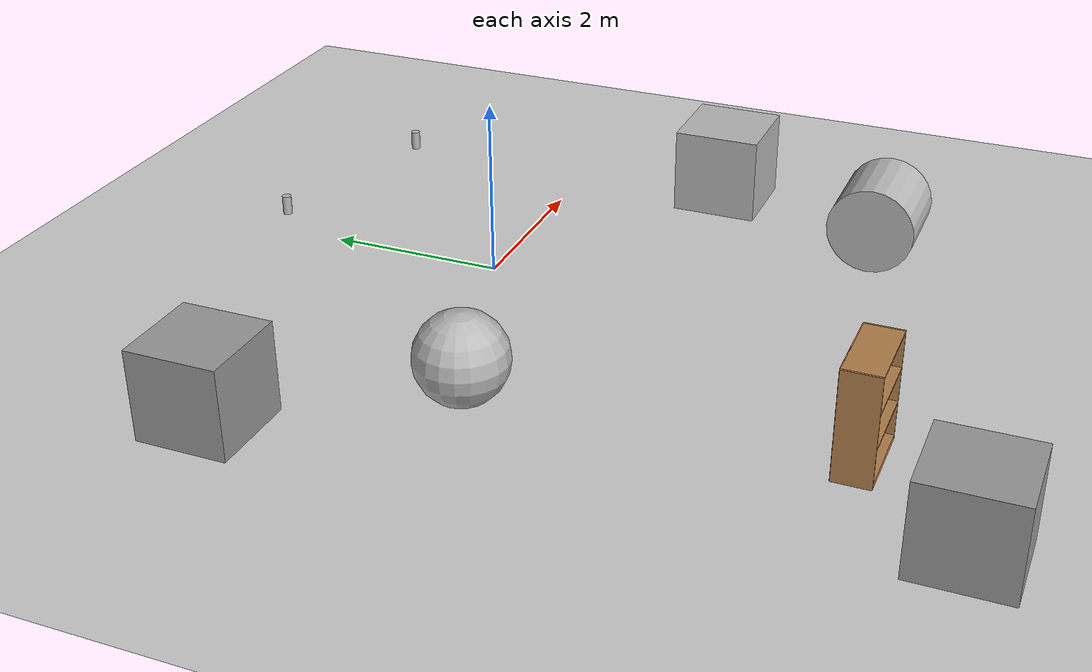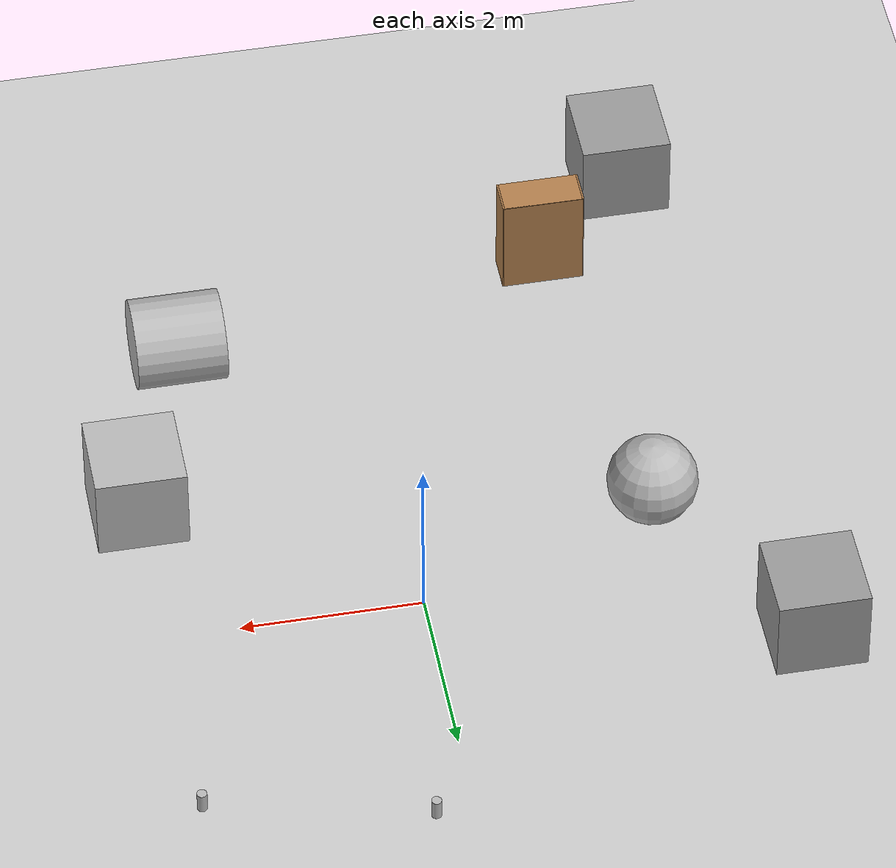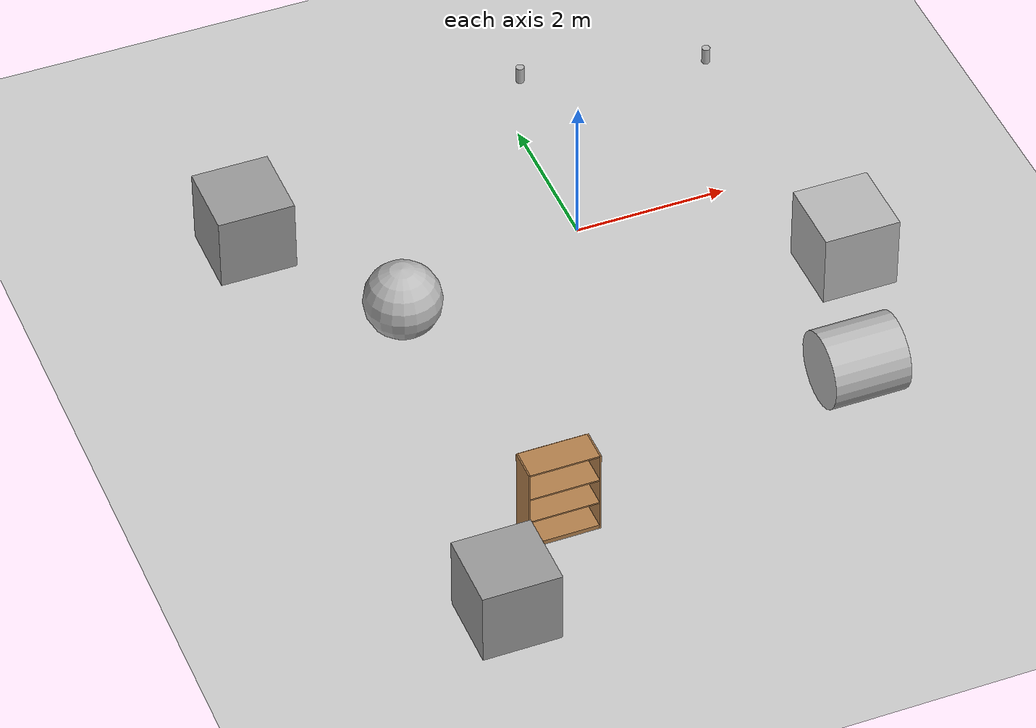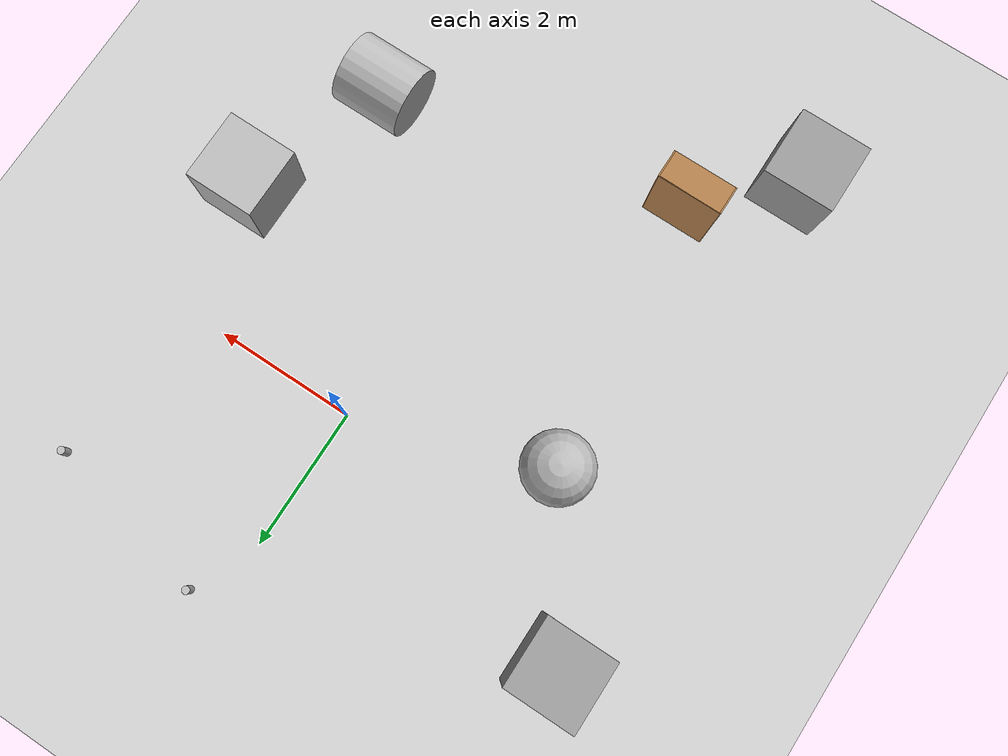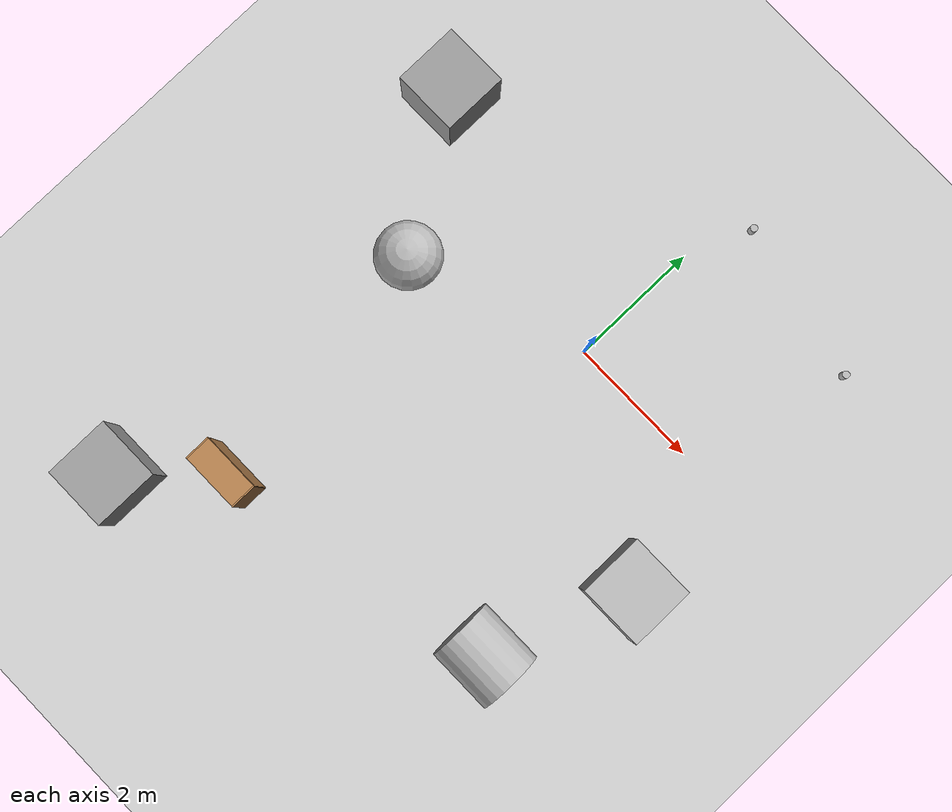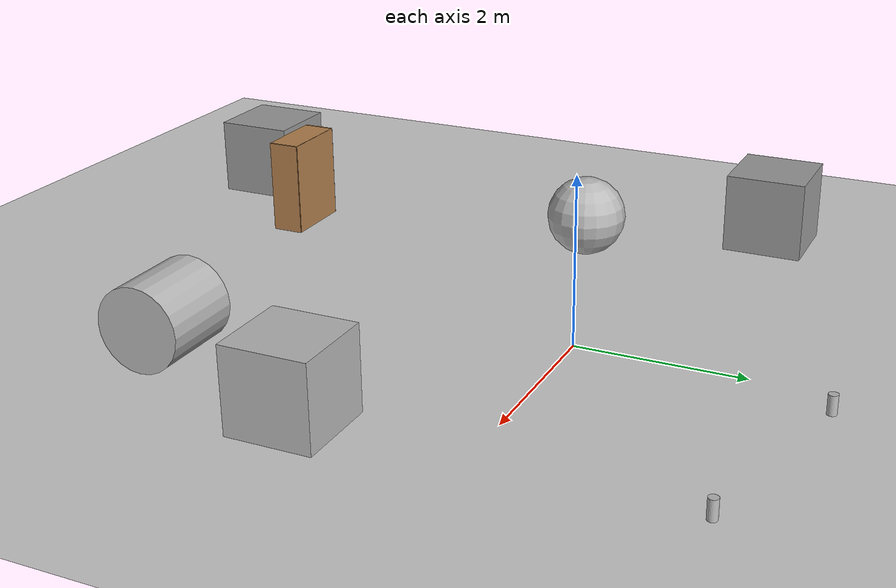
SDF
<sdf version="1.6">
 <world name="default">
  <model name="ground_plane">
   <static>1</static>
   <link name="link">
    <collision name="collision">
     <geometry><plane><normal>0 0 1</normal><size>100 100</size></plane></geometry>
     <surface><friction><ode><mu>100</mu><mu2>50</mu2></ode></friction></surface>
    </collision>
    <visual name="visual">
     <cast_shadows>0</cast_shadows>
     <geometry><plane><normal>0 0 1</normal><size>100 100</size></plane></geometry>
     <material>
      <script><uri>file://media/materials/scripts/gazebo.material</uri><name>Gazebo/Grey</name></script>
     </material>
    </visual>
   </link>
  </model>
  <light name="sun" type="directional">
   <pose>0 0 10 0 -0 0</pose>
   <diffuse>0.8 0.8 0.8 1</diffuse>
   <specular>0.1 0.1 0.1 1</specular>
   <attenuation>
    <range>1000</range>
    <constant>0.9</constant>
    <linear>0.01</linear>
    <quadratic>0.001</quadratic>
   </attenuation>
   <direction>-0.5 0.5 -1</direction>
  </light>
  <model name="box">
   <pose>2.82212 -1.87579 0.5 0 -0 0</pose>
   <link name="link">
    <collision name="collision"><geometry><box><size>1 1 1</size></box></geometry></collision>
    <visual name="visual">
     <geometry><box><size>1 1 1</size></box></geometry>
     <material><script><uri>__default__</uri><name>__default__</name></script></material>
    </visual>
    <inertial>
     <inertia><ixx>1</ixx><ixy>0</ixy><ixz>0</ixz><iyy>1</iyy><iyz>0</iyz><izz>1</izz></inertia>
     <mass>1</mass>
    </inertial>
   </link>
  </model>
  <model name="sphere">
   <pose>-2.67829 -0.886796 0.5 0 -0 0</pose>
   <link name="link">
    <collision name="collision"><geometry><sphere><radius>0.5</radius></sphere></geometry></collision>
    <visual name="visual">
     <geometry><sphere><radius>0.5</radius></sphere></geometry>
     <material><script><uri>__default__</uri><name>__default__</name></script></material>
    </visual>
    <inertial>
     <inertia><ixx>1</ixx><ixy>0</ixy><ixz>0</ixz><iyy>1</iyy><iyz>0</iyz><izz>1</izz></inertia>
     <mass>1</mass>
    </inertial>
   </link>
  </model>
  <model name="cylinder">
   <pose>2.04951 -3.95332 0.5 -1.57078 1.57079 -1.57078</pose>
   <link name="link">
    <collision name="collision">
     <geometry><cylinder><radius>0.5</radius><length>1</length></cylinder></geometry>
    </collision>
    <visual name="visual">
     <geometry><cylinder><radius>0.5</radius><length>1</length></cylinder></geometry>
     <material><script><uri>__default__</uri><name>__default__</name></script></material>
    </visual>
    <inertial>
     <inertia><ixx>1</ixx><ixy>0</ixy><ixz>0</ixz><iyy>1</iyy><iyz>0</iyz><izz>1</izz></inertia>
     <mass>1</mass>
    </inertial>
   </link>
  </model>
  <gravity>0 0 -9.8</gravity>
  <magnetic_field>6e-06 2.3e-05 -4.2e-05</magnetic_field>
  <atmosphere type="adiabatic"/>
  <physics name="default_physics" default="0" type="ode">
   <max_step_size>0.001</max_step_size>
   <real_time_factor>1</real_time_factor>
   <real_time_update_rate>1000</real_time_update_rate>
  </physics>
  <scene><ambient>0.4 0.4 0.4 1</ambient><background>0.7 0.7 0.7 1</background><shadows>1</shadows></scene>
  <spherical_coordinates>
   <surface_model>EARTH_WGS84</surface_model>
   <latitude_deg>0</latitude_deg>
   <longitude_deg>0</longitude_deg>
   <elevation>0</elevation>
   <heading_deg>0</heading_deg>
  </spherical_coordinates>
  <model name="beer">
   <link name="link">
    <pose>0 0 0.115 0 -0 0</pose>
    <inertial>
     <mass>0.39</mass>
     <inertia><ixx>0.00058</ixx><ixy>0</ixy><ixz>0</ixz><iyy>0.00058</iyy><iyz>0</iyz><izz>0.00019</izz></inertia>
    </inertial>
    <collision name="collision">
     <geometry><cylinder><radius>0.055</radius><length>0.23</length></cylinder></geometry>
    </collision>
    <visual name="visual">
     <geometry><cylinder><radius>0.055</radius><length>0.23</length></cylinder></geometry>
     <material>
      <script>
       <uri>model://beer/materials/scripts</uri>
       <uri>model://beer/materials/textures</uri>
       <name>Beer/Diffuse</name>
      </script>
     </material>
    </visual>
   </link>
   <pose>2.79017 2.41793 -7e-06 -1e-06 -0 -1.2e-05</pose>
  </model>
  <model name="beer_0">
   <link name="link">
    <pose>0 0 0.115 0 -0 0</pose>
    <inertial>
     <mass>0.39</mass>
     <inertia><ixx>0.00058</ixx><ixy>0</ixy><ixz>0</ixz><iyy>0.00058</iyy><iyz>0</iyz><izz>0.00019</izz></inertia>
    </inertial>
    <collision name="collision">
     <geometry><cylinder><radius>0.055</radius><length>0.23</length></cylinder></geometry>
    </collision>
    <visual name="visual">
     <geometry><cylinder><radius>0.055</radius><length>0.23</length></cylinder></geometry>
     <material>
      <script>
       <uri>model://beer/materials/scripts</uri>
       <uri>model://beer/materials/textures</uri>
       <name>Beer/Diffuse</name>
      </script>
     </material>
    </visual>
   </link>
   <pose>0.40707 2.96129 -2e-06 1e-06 -0 -9e-06</pose>
  </model>
  <model name="bookshelf">
   <static>1</static>
   <link name="link">
    <inertial><mass>1</mass></inertial>
    <collision name="back">
     <pose>0 0.005 0.6 0 -0 0</pose>
     <geometry><box><size>0.9 0.01 1.2</size></box></geometry>
    </collision>
    <visual name="visual1">
     <pose>0 0.005 0.6 0 -0 0</pose>
     <geometry><box><size>0.9 0.01 1.2</size></box></geometry>
     <material>
      <script><uri>file://media/materials/scripts/gazebo.material</uri><name>Gazebo/Wood</name></script>
     </material>
    </visual>
    <collision name="left_side">
     <pose>0.45 -0.195 0.6 0 -0 0</pose>
     <geometry><box><size>0.02 0.4 1.2</size></box></geometry>
    </collision>
    <visual name="visual2">
     <pose>0.45 -0.195 0.6 0 -0 0</pose>
     <geometry><box><size>0.02 0.4 1.2</size></box></geometry>
     <material>
      <script><uri>file://media/materials/scripts/gazebo.material</uri><name>Gazebo/Wood</name></script>
     </material>
    </visual>
    <collision name="right_side">
     <pose>-0.45 -0.195 0.6 0 -0 0</pose>
     <geometry><box><size>0.02 0.4 1.2</size></box></geometry>
    </collision>
    <visual name="visual3">
     <pose>-0.45 -0.195 0.6 0 -0 0</pose>
     <geometry><box><size>0.02 0.4 1.2</size></box></geometry>
     <material>
      <script><uri>file://media/materials/scripts/gazebo.material</uri><name>Gazebo/Wood</name></script>
     </material>
    </visual>
    <collision name="bottom">
     <pose>0 -0.195 0.03 0 -0 0</pose>
     <geometry><box><size>0.88 0.4 0.06</size></box></geometry>
    </collision>
    <visual name="visual4">
     <pose>0 -0.195 0.03 0 -0 0</pose>
     <geometry><box><size>0.88 0.4 0.06</size></box></geometry>
     <material>
      <script><uri>file://media/materials/scripts/gazebo.material</uri><name>Gazebo/Wood</name></script>
     </material>
    </visual>
    <collision name="top">
     <pose>0 -0.195 1.19 0 -0 0</pose>
     <geometry><box><size>0.88 0.4 0.02</size></box></geometry>
    </collision>
    <visual name="visual5">
     <pose>0 -0.195 1.19 0 -0 0</pose>
     <geometry><box><size>0.88 0.4 0.02</size></box></geometry>
     <material>
      <script><uri>file://media/materials/scripts/gazebo.material</uri><name>Gazebo/Wood</name></script>
     </material>
    </visual>
    <collision name="low_shelf">
     <pose>0 -0.195 0.43 0 -0 0</pose>
     <geometry><box><size>0.88 0.4 0.02</size></box></geometry>
    </collision>
    <visual name="visual6">
     <pose>0 -0.195 0.43 0 -0 0</pose>
     <geometry><box><size>0.88 0.4 0.02</size></box></geometry>
     <material>
      <script><uri>file://media/materials/scripts/gazebo.material</uri><name>Gazebo/Wood</name></script>
     </material>
    </visual>
    <collision name="high_shelf">
     <pose>0 -0.195 0.8 0 -0 0</pose>
     <geometry><box><size>0.88 0.4 0.02</size></box></geometry>
    </collision>
    <visual name="visual7">
     <pose>0 -0.195 0.8 0 -0 0</pose>
     <geometry><box><size>0.88 0.4 0.02</size></box></geometry>
     <material>
      <script><uri>file://media/materials/scripts/gazebo.material</uri><name>Gazebo/Wood</name></script>
     </material>
    </visual>
   </link>
   <pose>-2.19852 -4.60011 0 0 -0 0</pose>
  </model>
  <model name="unit_box_0">
   <pose>-3.99471 1.20322 0.499995 -1e-05 0 0</pose>
   <link name="link">
    <inertial>
     <mass>1</mass>
     <inertia>
      <ixx>0.166667</ixx>
      <ixy>0</ixy>
      <ixz>0</ixz>
      <iyy>0.166667</iyy>
      <iyz>0</iyz>
      <izz>0.166667</izz>
     </inertia>
    </inertial>
    <collision name="collision"><geometry><box><size>1 1 1</size></box></geometry></collision>
    <visual name="visual">
     <geometry><box><size>1 1 1</size></box></geometry>
     <material>
      <script><name>Gazebo/Grey</name><uri>file://media/materials/scripts/gazebo.material</uri></script>
     </material>
    </visual>
   </link>
  </model>
  <model name="unit_box_1">
   <pose>-3.32963 -5.9848 0.499995 0 -1e-05 0</pose>
   <link name="link">
    <inertial>
     <mass>1</mass>
     <inertia>
      <ixx>0.166667</ixx>
      <ixy>0</ixy>
      <ixz>0</ixz>
      <iyy>0.166667</iyy>
      <iyz>0</iyz>
      <izz>0.166667</izz>
     </inertia>
    </inertial>
    <collision name="collision"><geometry><box><size>1 1 1</size></box></geometry></collision>
    <visual name="visual">
     <geometry><box><size>1 1 1</size></box></geometry>
     <material>
      <script><name>Gazebo/Grey</name><uri>file://media/materials/scripts/gazebo.material</uri></script>
     </material>
    </visual>
   </link>
  </model>
 </world>
</sdf>
